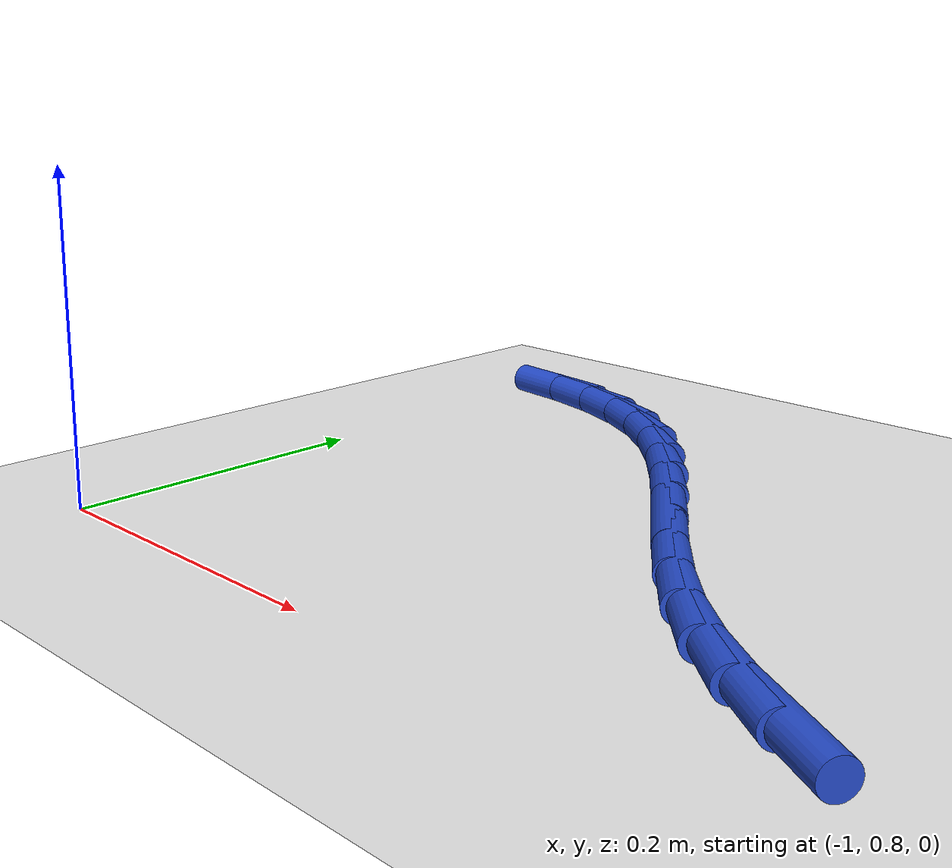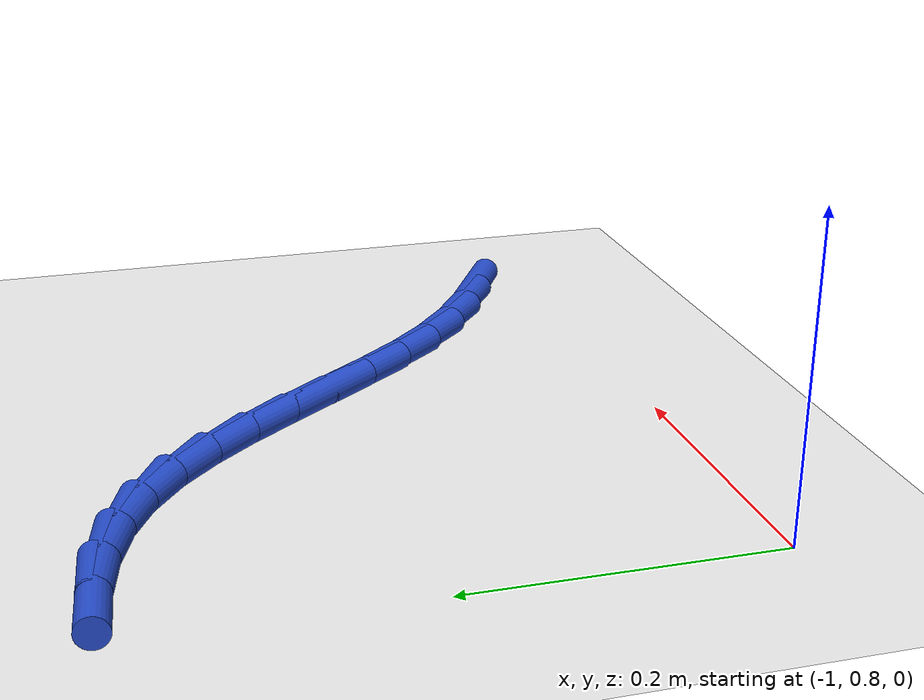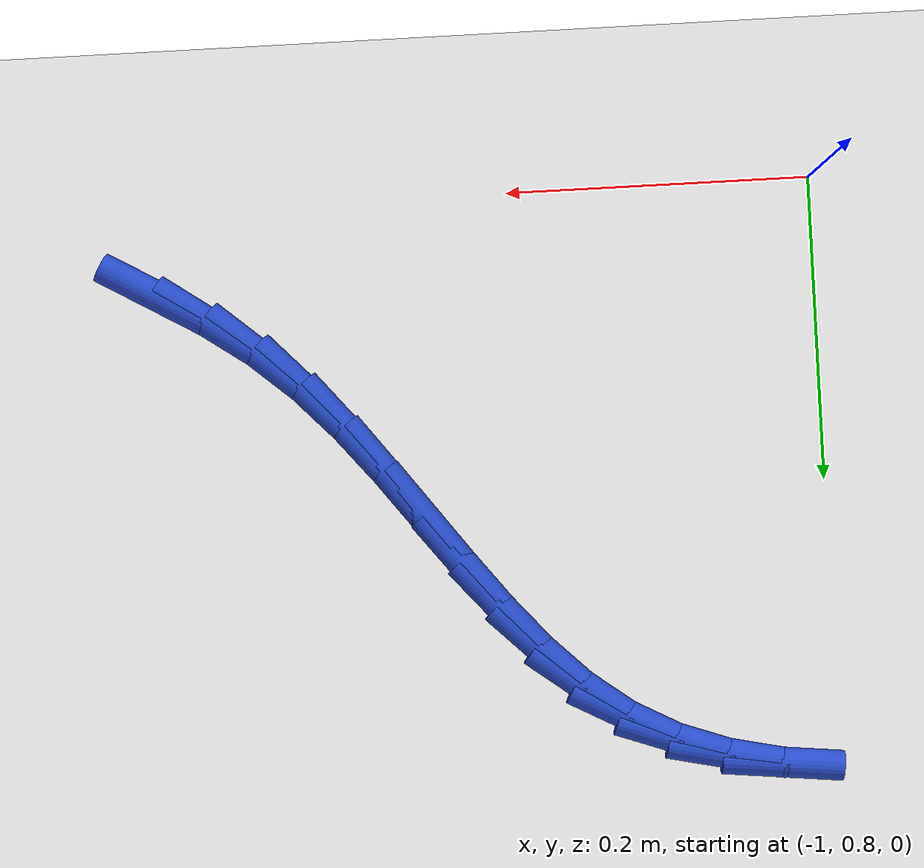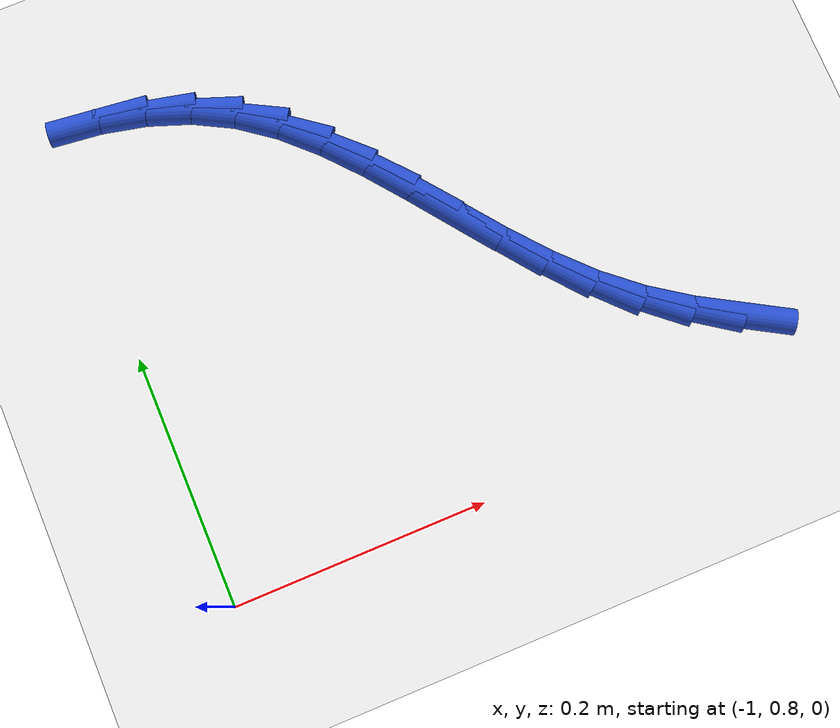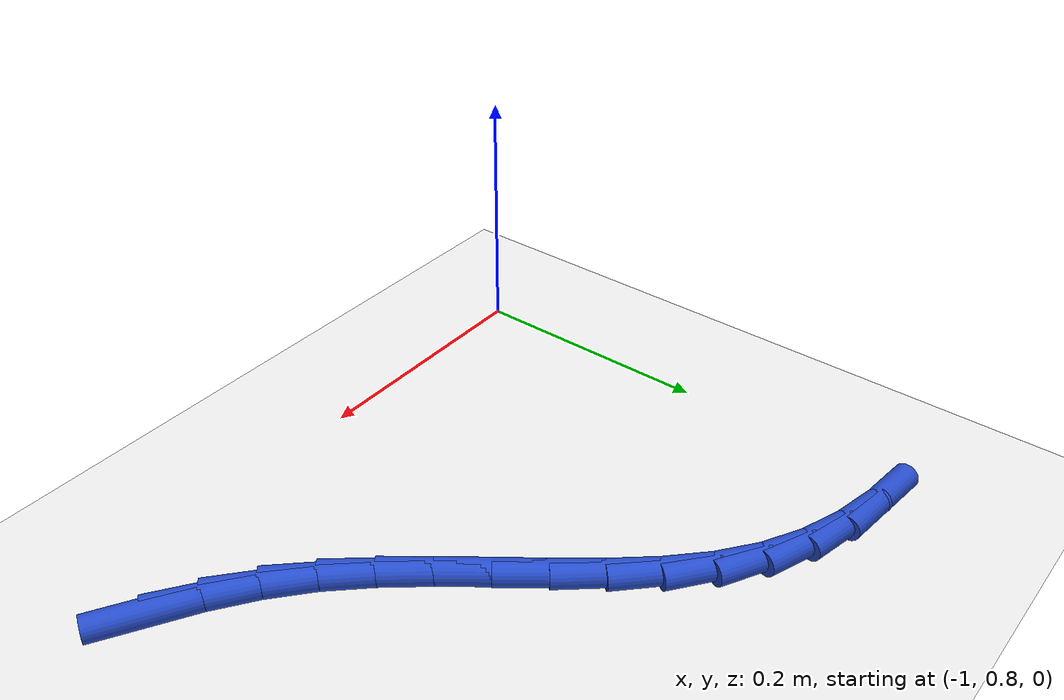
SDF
<sdf version="1.6">
 <world name="default">
  <model name="ground_plane">
   <static>1</static>
   <link name="link">
    <collision name="collision">
     <geometry><plane><normal>0 0 1</normal><size>100 100</size></plane></geometry>
     <surface><friction><ode><mu>100</mu><mu2>50</mu2></ode></friction></surface>
    </collision>
    <visual name="visual">
     <cast_shadows>0</cast_shadows>
     <geometry><plane><normal>0 0 1</normal><size>100 100</size></plane></geometry>
     <material>
      <script><uri>file://media/materials/scripts/gazebo.material</uri><name>Gazebo/WhiteGlow</name></script>
     </material>
    </visual>
   </link>
  </model>
  <model name="line">
   <link name="link_29">
    <pose>-0.5654863854993971 0.8550149719868427 0.01 0 1.57 -0.5271430757725099</pose>
    <collision name="collision">
     <geometry><cylinder><radius>0.01</radius><length>0.08</length></cylinder></geometry>
    </collision>
    <visual name="visual">
     <material>
      <script><name>Gazebo/Blue</name><uri>file://media/materials/scripts/gazebo.material</uri></script>
     </material>
     <geometry><cylinder><radius>0.01</radius><length>0.08</length></cylinder></geometry>
    </visual>
   </link>
   <link name="link_30">
    <pose>-0.5985929832693777 0.8742858495460115 0.01 0 1.57 -0.6090811888094031</pose>
    <collision name="collision">
     <geometry><cylinder><radius>0.01</radius><length>0.08</length></cylinder></geometry>
    </collision>
    <visual name="visual">
     <material>
      <script><name>Gazebo/Blue</name><uri>file://media/materials/scripts/gazebo.material</uri></script>
     </material>
     <geometry><cylinder><radius>0.01</radius><length>0.08</length></cylinder></geometry>
    </visual>
   </link>
   <link name="link_31">
    <pose>-0.6298793942479946 0.8961097512428267 0.01 0 1.57 -0.7094021516972332</pose>
    <collision name="collision">
     <geometry><cylinder><radius>0.01</radius><length>0.08</length></cylinder></geometry>
    </collision>
    <visual name="visual">
     <material>
      <script><name>Gazebo/Blue</name><uri>file://media/materials/scripts/gazebo.material</uri></script>
     </material>
     <geometry><cylinder><radius>0.01</radius><length>0.08</length></cylinder></geometry>
    </visual>
   </link>
   <link name="link_32">
    <pose>-0.6589147795313913 0.921036329475355 0.01 0 1.57 -0.8089639535565651</pose>
    <collision name="collision">
     <geometry><cylinder><radius>0.01</radius><length>0.08</length></cylinder></geometry>
    </collision>
    <visual name="visual">
     <material>
      <script><name>Gazebo/Blue</name><uri>file://media/materials/scripts/gazebo.material</uri></script>
     </material>
     <geometry><cylinder><radius>0.01</radius><length>0.08</length></cylinder></geometry>
    </visual>
   </link>
   <link name="link_33">
    <pose>-0.6856483324062685 0.9490605310285759 0.01 0 1.57 -0.8786093852530055</pose>
    <collision name="collision">
     <geometry><cylinder><radius>0.01</radius><length>0.08</length></cylinder></geometry>
    </collision>
    <visual name="visual">
     <material>
      <script><name>Gazebo/Blue</name><uri>file://media/materials/scripts/gazebo.material</uri></script>
     </material>
     <geometry><cylinder><radius>0.01</radius><length>0.08</length></cylinder></geometry>
    </visual>
   </link>
   <link name="link_34">
    <pose>-0.7106697236635895 0.979242443811036 0.01 0 1.57 -0.9175937772902937</pose>
    <collision name="collision">
     <geometry><cylinder><radius>0.01</radius><length>0.08</length></cylinder></geometry>
    </collision>
    <visual name="visual">
     <material>
      <script><name>Gazebo/Blue</name><uri>file://media/materials/scripts/gazebo.material</uri></script>
     </material>
     <geometry><cylinder><radius>0.01</radius><length>0.08</length></cylinder></geometry>
    </visual>
   </link>
   <link name="link_35">
    <pose>-0.7346302014377316 1.0105522757188001 0.01 0 1.57 -0.927400305819622</pose>
    <collision name="collision">
     <geometry><cylinder><radius>0.01</radius><length>0.08</length></cylinder></geometry>
    </collision>
    <visual name="visual">
     <material>
      <script><name>Gazebo/Blue</name><uri>file://media/materials/scripts/gazebo.material</uri></script>
     </material>
     <geometry><cylinder><radius>0.01</radius><length>0.08</length></cylinder></geometry>
    </visual>
   </link>
   <link name="link_36">
    <pose>-0.7581810138630726 1.0419602346479329 0.01 0 1.57 -0.9079440865757169</pose>
    <collision name="collision">
     <geometry><cylinder><radius>0.01</radius><length>0.08</length></cylinder></geometry>
    </collision>
    <visual name="visual">
     <material>
      <script><name>Gazebo/Blue</name><uri>file://media/materials/scripts/gazebo.material</uri></script>
     </material>
     <geometry><cylinder><radius>0.01</radius><length>0.08</length></cylinder></geometry>
    </visual>
   </link>
   <link name="link_37">
    <pose>-0.7819734090739897 1.072436528494499 0.01 0 1.57 -0.8572592852688175</pose>
    <collision name="collision">
     <geometry><cylinder><radius>0.01</radius><length>0.08</length></cylinder></geometry>
    </collision>
    <visual name="visual">
     <material>
      <script><name>Gazebo/Blue</name><uri>file://media/materials/scripts/gazebo.material</uri></script>
     </material>
     <geometry><cylinder><radius>0.01</radius><length>0.08</length></cylinder></geometry>
    </visual>
   </link>
   <link name="link_38">
    <pose>-0.8066586352048603 1.100951365154563 0.01 0 1.57 -0.7717627114795786</pose>
    <collision name="collision">
     <geometry><cylinder><radius>0.01</radius><length>0.08</length></cylinder></geometry>
    </collision>
    <visual name="visual">
     <material>
      <script><name>Gazebo/Blue</name><uri>file://media/materials/scripts/gazebo.material</uri></script>
     </material>
     <geometry><cylinder><radius>0.01</radius><length>0.08</length></cylinder></geometry>
    </visual>
   </link>
   <link name="link_39">
    <pose>-0.8328879403900619 1.1264749525241897 0.01 0 1.57 -0.647632742397031</pose>
    <collision name="collision">
     <geometry><cylinder><radius>0.01</radius><length>0.08</length></cylinder></geometry>
    </collision>
    <visual name="visual">
     <material>
      <script><name>Gazebo/Blue</name><uri>file://media/materials/scripts/gazebo.material</uri></script>
     </material>
     <geometry><cylinder><radius>0.01</radius><length>0.08</length></cylinder></geometry>
    </visual>
   </link>
   <link name="link_40">
    <pose>-0.8613125727639719 1.147977498499444 0.01 0 1.57 -0.4924002176386117</pose>
    <collision name="collision">
     <geometry><cylinder><radius>0.01</radius><length>0.08</length></cylinder></geometry>
    </collision>
    <visual name="visual">
     <material>
      <script><name>Gazebo/Blue</name><uri>file://media/materials/scripts/gazebo.material</uri></script>
     </material>
     <geometry><cylinder><radius>0.01</radius><length>0.08</length></cylinder></geometry>
    </visual>
   </link>
   <link name="link_41">
    <pose>-0.8924196567085617 1.1646656773094157 0.01 0 1.57 -0.34451761371591727</pose>
    <collision name="collision">
     <geometry><cylinder><radius>0.01</radius><length>0.08</length></cylinder></geometry>
    </collision>
    <visual name="visual">
     <material>
      <script><name>Gazebo/Blue</name><uri>file://media/materials/scripts/gazebo.material</uri></script>
     </material>
     <geometry><cylinder><radius>0.01</radius><length>0.08</length></cylinder></geometry>
    </visual>
   </link>
   <link name="link_42">
    <pose>-0.9260189817068025 1.176722054225465 0.01 0 1.57 -0.21652344081053565</pose>
    <collision name="collision">
     <geometry><cylinder><radius>0.01</radius><length>0.08</length></cylinder></geometry>
    </collision>
    <visual name="visual">
     <material>
      <script><name>Gazebo/Blue</name><uri>file://media/materials/scripts/gazebo.material</uri></script>
     </material>
     <geometry><cylinder><radius>0.01</radius><length>0.08</length></cylinder></geometry>
    </visual>
   </link>
   <link name="link_43">
    <pose>-0.9617456292186104 1.1845809104647338 0.01 0 1.57 -0.10881680400815058</pose>
    <collision name="collision">
     <geometry><cylinder><radius>0.01</radius><length>0.08</length></cylinder></geometry>
    </collision>
    <visual name="visual">
     <material>
      <script><name>Gazebo/Blue</name><uri>file://media/materials/scripts/gazebo.material</uri></script>
     </material>
     <geometry><cylinder><radius>0.01</radius><length>0.08</length></cylinder></geometry>
    </visual>
   </link>
  </model>
 </world>
</sdf>
